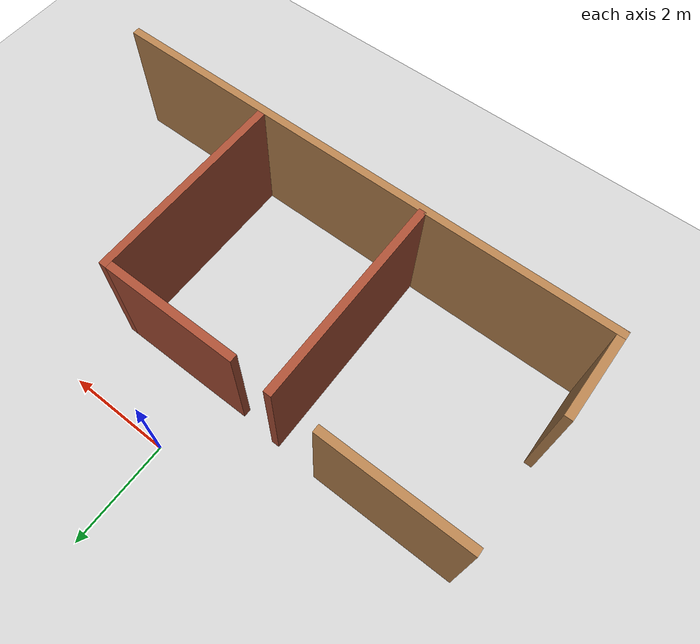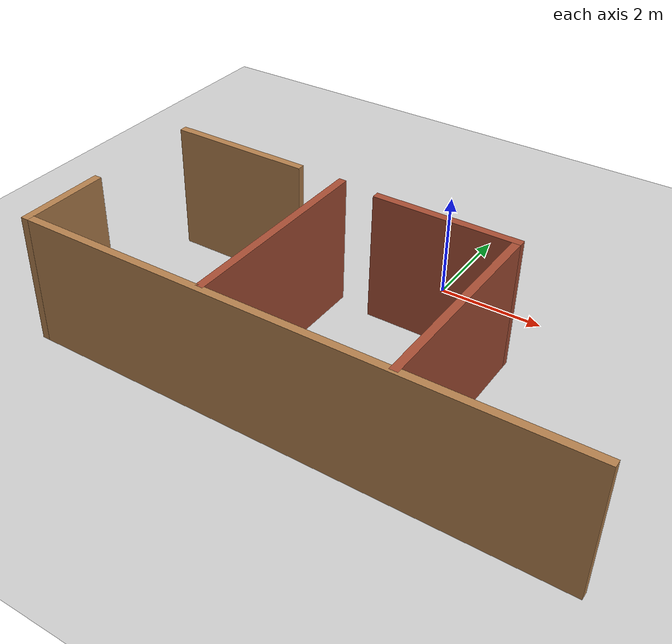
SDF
<sdf version="1.7">
 <world name="default">
  <light name="sun" type="directional">
   <pose>0 0 10 0 -0 0</pose>
   <diffuse>0.8 0.8 0.8 1</diffuse>
   <specular>0.2 0.2 0.2 1</specular>
   <attenuation>
    <range>1000</range>
    <constant>0.9</constant>
    <linear>0.01</linear>
    <quadratic>0.001</quadratic>
   </attenuation>
   <direction>-0.5 0.1 -0.9</direction>
   <spot><inner_angle>0</inner_angle><outer_angle>0</outer_angle><falloff>0</falloff></spot>
  </light>
  <model name="ground_plane">
   <static>1</static>
   <link name="link">
    <collision name="collision">
     <geometry><plane><normal>0 0 1</normal><size>100 100</size></plane></geometry>
     <surface>
      <contact><collide_bitmask>65535</collide_bitmask></contact>
      <friction><ode><mu>100</mu><mu2>50</mu2></ode></friction>
     </surface>
    </collision>
    <visual name="visual">
     <cast_shadows>0</cast_shadows>
     <geometry><plane><normal>0 0 1</normal><size>100 100</size></plane></geometry>
     <material>
      <script><uri>file://media/materials/scripts/gazebo.material</uri><name>Gazebo/Grey</name></script>
     </material>
    </visual>
   </link>
  </model>
  <physics type="ode">
   <real_time_update_rate>1000</real_time_update_rate>
   <max_step_size>0.001</max_step_size>
   <real_time_factor>1</real_time_factor>
   <ode>
    <solver>
     <type>quick</type>
     <iters>150</iters>
     <precon_iters>0</precon_iters>
     <sor>1.4</sor>
     <use_dynamic_moi_rescaling>1</use_dynamic_moi_rescaling>
    </solver>
    <constraints>
     <cfm>1e-05</cfm>
     <erp>0.2</erp>
     <contact_max_correcting_vel>2000</contact_max_correcting_vel>
     <contact_surface_layer>0.01</contact_surface_layer>
    </constraints>
   </ode>
  </physics>
  <scene><ambient>0.4 0.4 0.4 1</ambient><background>0.7 0.7 0.7 1</background><shadows>1</shadows></scene>
  <gravity>0 0 -9.8</gravity>
  <magnetic_field>6e-06 2.3e-05 -4.2e-05</magnetic_field>
  <atmosphere type="adiabatic"/>
  <spherical_coordinates>
   <surface_model>EARTH_WGS84</surface_model>
   <latitude_deg>0</latitude_deg>
   <longitude_deg>0</longitude_deg>
   <elevation>0</elevation>
   <heading_deg>0</heading_deg>
  </spherical_coordinates>
  <model name="model13">
   <pose>-0.098212 -2.67816 0 0 -0 0</pose>
   <link name="Wall_16">
    <collision name="Wall_16_Collision">
     <geometry><box><size>10.25 0.15 2.5</size></box></geometry>
     <pose>0 0 1.25 0 -0 0</pose>
    </collision>
    <visual name="Wall_16_Visual">
     <pose>0 0 1.25 0 -0 0</pose>
     <geometry><box><size>10.25 0.15 2.5</size></box></geometry>
     <material>
      <script><uri>file://media/materials/scripts/gazebo.material</uri><name>Gazebo/Wood</name></script>
      <ambient>1 1 1 1</ambient>
     </material>
     <meta><layer>0</layer></meta>
    </visual>
    <pose>0 -2.62191 0 0 -0 3.14159</pose>
   </link>
   <link name="Wall_17">
    <collision name="Wall_17_Collision">
     <geometry><box><size>1.75 0.15 2.5</size></box></geometry>
     <pose>0 0 1.25 0 -0 0</pose>
    </collision>
    <visual name="Wall_17_Visual">
     <pose>0 0 1.25 0 -0 0</pose>
     <geometry><box><size>1.75 0.15 2.5</size></box></geometry>
     <material>
      <script><uri>file://media/materials/scripts/gazebo.material</uri><name>Gazebo/Wood</name></script>
      <ambient>1 1 1 1</ambient>
     </material>
     <meta><layer>0</layer></meta>
    </visual>
    <pose>-5.05 -1.82191 0 0 -0 1.5708</pose>
   </link>
   <link name="Wall_19">
    <collision name="Wall_19_Collision">
     <geometry><box><size>4 0.15 2.5</size></box></geometry>
     <pose>0 0 1.25 0 -0 0</pose>
    </collision>
    <visual name="Wall_19_Visual">
     <pose>0 0 1.25 0 -0 0</pose>
     <geometry><box><size>4 0.15 2.5</size></box></geometry>
     <material>
      <script><uri>file://media/materials/scripts/gazebo.material</uri><name>Gazebo/Bricks</name></script>
      <ambient>1 1 1 1</ambient>
     </material>
     <meta><layer>0</layer></meta>
    </visual>
    <pose>-1.42977 -0.587873 0 0 -0 1.5708</pose>
   </link>
   <link name="Wall_21">
    <collision name="Wall_21_Collision">
     <geometry><box><size>4 0.15 2.5</size></box></geometry>
     <pose>0 0 1.25 0 -0 0</pose>
    </collision>
    <visual name="Wall_21_Visual">
     <pose>0 0 1.25 0 -0 0</pose>
     <geometry><box><size>4 0.15 2.5</size></box></geometry>
     <material>
      <script><uri>file://media/materials/scripts/gazebo.material</uri><name>Gazebo/Bricks</name></script>
      <ambient>1 1 1 1</ambient>
     </material>
     <meta><layer>0</layer></meta>
    </visual>
    <pose>1.98762 -0.640047 0 0 -0 1.5708</pose>
   </link>
   <link name="Wall_22">
    <collision name="Wall_22_Collision">
     <geometry><box><size>2.75 0.15 2.5</size></box></geometry>
     <pose>0 0 1.25 0 -0 0</pose>
    </collision>
    <visual name="Wall_22_Visual">
     <pose>0 0 1.25 0 -0 0</pose>
     <geometry><box><size>2.75 0.15 2.5</size></box></geometry>
     <material>
      <script><uri>file://media/materials/scripts/gazebo.material</uri><name>Gazebo/Bricks</name></script>
      <ambient>1 1 1 1</ambient>
     </material>
     <meta><layer>0</layer></meta>
    </visual>
    <pose>0.687623 1.28495 0 0 -0 3.14159</pose>
   </link>
   <link name="Wall_24">
    <collision name="Wall_24_Collision">
     <geometry><box><size>2.75 0.15 2.5</size></box></geometry>
     <pose>0 0 1.25 0 -0 0</pose>
    </collision>
    <visual name="Wall_24_Visual">
     <pose>0 0 1.25 0 -0 0</pose>
     <geometry><box><size>2.75 0.15 2.5</size></box></geometry>
     <material>
      <script><uri>file://media/materials/scripts/gazebo.material</uri><name>Gazebo/Wood</name></script>
      <ambient>1 1 1 1</ambient>
     </material>
     <meta><layer>0</layer></meta>
    </visual>
    <pose>-3.6689 1.37408 0 0 -0 3.14159</pose>
   </link>
   <static>1</static>
  </model>
 </world>
</sdf>
